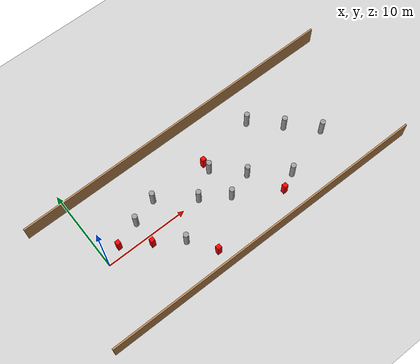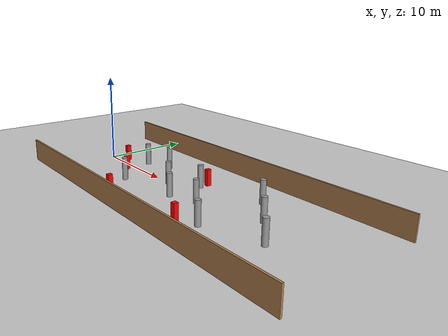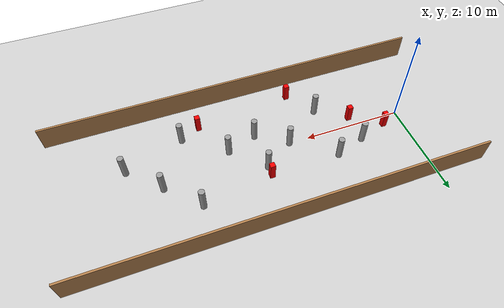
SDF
<?xml version="1.0" ?>
<sdf version="1.7">
    <world name="custom_world">
        <light name='sun' type='directional'>
            <cast_shadows>1</cast_shadows>
            <pose>0 0 10 0 -0 0</pose>
            <diffuse>0.8 0.8 0.8 1</diffuse>
            <specular>0.2 0.2 0.2 1</specular>
            <attenuation>
                <range>1000</range>
                <constant>0.9</constant>
                <linear>0.01</linear>
                <quadratic>0.001</quadratic>
            </attenuation>
            <direction>-0.5 0.1 -0.9</direction>
        </light>

        <model name='ground_plane'>
            <static>1</static>
            <link name='link'>
                <collision name='collision'>
                    <geometry>
                        <plane>
                            <normal>0 0 1</normal>
                            <size>100 100</size>
                        </plane>
                    </geometry>
                    <surface>
                        <contact>
                            <collide_bitmask>65535</collide_bitmask>
                            <ode/>
                        </contact>
                        <friction>
                            <ode>
                                <mu>100</mu>
                                <mu2>50</mu2>
                            </ode>
                        </friction>
                        <bounce/>
                    </surface>
                </collision>
                <visual name='visual'>
                    <cast_shadows>0</cast_shadows>
                    <geometry>
                        <plane>
                            <normal>0 0 1</normal>
                            <size>100 100</size>
                        </plane>
                    </geometry>
                    <material>
                        <script>
                            <uri>file://media/materials/scripts/gazebo.material</uri>
                            <name>Gazebo/Grey</name>
                        </script>
                    </material>
                </visual>
            </link>
        </model>

        <gravity>0 0 -9.8</gravity>
        <magnetic_field>6e-06 2.3e-05 -4.2e-05</magnetic_field>
        <atmosphere type='adiabatic'/>
        <physics type='ode'>
            <max_step_size>0.002</max_step_size>
            <real_time_factor>1</real_time_factor>
            <real_time_update_rate>500</real_time_update_rate>
        </physics>
        <scene>
            <ambient>0.4 0.4 0.4 1</ambient>
            <background>0.7 0.7 0.7 1</background>
            <shadows>1</shadows>
        </scene>

    <model name='wall_left'>
        <static>1</static>
        <pose>15 -8 1.25 0 0 0</pose>
        <link name='link'>
            <collision name='collision'>
                <geometry>
                    <box>
                        <size>40 0.2 2.5</size>
                    </box>
                </geometry>
                <pose>0 0 0 0 0 0</pose>
            </collision>
            <visual name='visual'>
                <pose>0 0 0 0 0 0</pose>
                <geometry>
                    <box>
                        <size>40 0.2 2.5</size>
                    </box>
                </geometry>
                <material>
                    <script>
                        <uri>file://media/materials/scripts/gazebo.material</uri>
                        <name>Gazebo/Wood</name>
                    </script>
                </material>
            </visual>
        </link>
    </model>
    <model name='wall_right'>
        <static>1</static>
        <pose>15 8 1.25 0 0 0</pose>
        <link name='link'>
            <collision name='collision'>
                <geometry>
                    <box>
                        <size>40 0.2 2.5</size>
                    </box>
                </geometry>
                <pose>0 0 0 0 0 0</pose>
            </collision>
            <visual name='visual'>
                <pose>0 0 0 0 0 0</pose>
                <geometry>
                    <box>
                        <size>40 0.2 2.5</size>
                    </box>
                </geometry>
                <material>
                    <script>
                        <uri>file://media/materials/scripts/gazebo.material</uri>
                        <name>Gazebo/Wood</name>
                    </script>
                </material>
            </visual>
        </link>
    </model>
        <model name='pillar_0'>
            <static>1</static>
            <pose>8 -3 1.25 0 0 0</pose>
            <link name='link'>
                <collision name='collision'>
                    <geometry>
                        <cylinder>
                            <radius>0.3</radius>
                            <length>2.5</length>
                        </cylinder>
                    </geometry>
                    <pose>0 0 0 0 0 0</pose>
                </collision>
                <visual name='visual'>
                    <pose>0 0 0 0 0 0</pose>
                    <geometry>
                        <cylinder>
                            <radius>0.3</radius>
                            <length>2.5</length>
                        </cylinder>
                    </geometry>
                    <material>
                        <script>
                            <uri>file://media/materials/scripts/gazebo.material</uri>
                            <name>Gazebo/Grey</name>
                        </script>
                    </material>
                </visual>
            </link>
        </model>
        <model name='pillar_1'>
            <static>1</static>
            <pose>8 3 1.25 0 0 0</pose>
            <link name='link'>
                <collision name='collision'>
                    <geometry>
                        <cylinder>
                            <radius>0.3</radius>
                            <length>2.5</length>
                        </cylinder>
                    </geometry>
                    <pose>0 0 0 0 0 0</pose>
                </collision>
                <visual name='visual'>
                    <pose>0 0 0 0 0 0</pose>
                    <geometry>
                        <cylinder>
                            <radius>0.3</radius>
                            <length>2.5</length>
                        </cylinder>
                    </geometry>
                    <material>
                        <script>
                            <uri>file://media/materials/scripts/gazebo.material</uri>
                            <name>Gazebo/Grey</name>
                        </script>
                    </material>
                </visual>
            </link>
        </model>
        <model name='pillar_2'>
            <static>1</static>
            <pose>15 -2 1.25 0 0 0</pose>
            <link name='link'>
                <collision name='collision'>
                    <geometry>
                        <cylinder>
                            <radius>0.3</radius>
                            <length>2.5</length>
                        </cylinder>
                    </geometry>
                    <pose>0 0 0 0 0 0</pose>
                </collision>
                <visual name='visual'>
                    <pose>0 0 0 0 0 0</pose>
                    <geometry>
                        <cylinder>
                            <radius>0.3</radius>
                            <length>2.5</length>
                        </cylinder>
                    </geometry>
                    <material>
                        <script>
                            <uri>file://media/materials/scripts/gazebo.material</uri>
                            <name>Gazebo/Grey</name>
                        </script>
                    </material>
                </visual>
            </link>
        </model>
        <model name='pillar_3'>
            <static>1</static>
            <pose>15 2 1.25 0 0 0</pose>
            <link name='link'>
                <collision name='collision'>
                    <geometry>
                        <cylinder>
                            <radius>0.3</radius>
                            <length>2.5</length>
                        </cylinder>
                    </geometry>
                    <pose>0 0 0 0 0 0</pose>
                </collision>
                <visual name='visual'>
                    <pose>0 0 0 0 0 0</pose>
                    <geometry>
                        <cylinder>
                            <radius>0.3</radius>
                            <length>2.5</length>
                        </cylinder>
                    </geometry>
                    <material>
                        <script>
                            <uri>file://media/materials/scripts/gazebo.material</uri>
                            <name>Gazebo/Grey</name>
                        </script>
                    </material>
                </visual>
            </link>
        </model>
        <model name='pillar_4'>
            <static>1</static>
            <pose>22 -4 1.25 0 0 0</pose>
            <link name='link'>
                <collision name='collision'>
                    <geometry>
                        <cylinder>
                            <radius>0.3</radius>
                            <length>2.5</length>
                        </cylinder>
                    </geometry>
                    <pose>0 0 0 0 0 0</pose>
                </collision>
                <visual name='visual'>
                    <pose>0 0 0 0 0 0</pose>
                    <geometry>
                        <cylinder>
                            <radius>0.3</radius>
                            <length>2.5</length>
                        </cylinder>
                    </geometry>
                    <material>
                        <script>
                            <uri>file://media/materials/scripts/gazebo.material</uri>
                            <name>Gazebo/Grey</name>
                        </script>
                    </material>
                </visual>
            </link>
        </model>
        <model name='pillar_5'>
            <static>1</static>
            <pose>22 4 1.25 0 0 0</pose>
            <link name='link'>
                <collision name='collision'>
                    <geometry>
                        <cylinder>
                            <radius>0.3</radius>
                            <length>2.5</length>
                        </cylinder>
                    </geometry>
                    <pose>0 0 0 0 0 0</pose>
                </collision>
                <visual name='visual'>
                    <pose>0 0 0 0 0 0</pose>
                    <geometry>
                        <cylinder>
                            <radius>0.3</radius>
                            <length>2.5</length>
                        </cylinder>
                    </geometry>
                    <material>
                        <script>
                            <uri>file://media/materials/scripts/gazebo.material</uri>
                            <name>Gazebo/Grey</name>
                        </script>
                    </material>
                </visual>
            </link>
        </model>
        <model name='pillar_6'>
            <static>1</static>
            <pose>12 0 1.25 0 0 0</pose>
            <link name='link'>
                <collision name='collision'>
                    <geometry>
                        <cylinder>
                            <radius>0.3</radius>
                            <length>2.5</length>
                        </cylinder>
                    </geometry>
                    <pose>0 0 0 0 0 0</pose>
                </collision>
                <visual name='visual'>
                    <pose>0 0 0 0 0 0</pose>
                    <geometry>
                        <cylinder>
                            <radius>0.3</radius>
                            <length>2.5</length>
                        </cylinder>
                    </geometry>
                    <material>
                        <script>
                            <uri>file://media/materials/scripts/gazebo.material</uri>
                            <name>Gazebo/Grey</name>
                        </script>
                    </material>
                </visual>
            </link>
        </model>
        <model name='pillar_7'>
            <static>1</static>
            <pose>18 -1 1.25 0 0 0</pose>
            <link name='link'>
                <collision name='collision'>
                    <geometry>
                        <cylinder>
                            <radius>0.3</radius>
                            <length>2.5</length>
                        </cylinder>
                    </geometry>
                    <pose>0 0 0 0 0 0</pose>
                </collision>
                <visual name='visual'>
                    <pose>0 0 0 0 0 0</pose>
                    <geometry>
                        <cylinder>
                            <radius>0.3</radius>
                            <length>2.5</length>
                        </cylinder>
                    </geometry>
                    <material>
                        <script>
                            <uri>file://media/materials/scripts/gazebo.material</uri>
                            <name>Gazebo/Grey</name>
                        </script>
                    </material>
                </visual>
            </link>
        </model>
        <model name='pillar_8'>
            <static>1</static>
            <pose>25 1 1.25 0 0 0</pose>
            <link name='link'>
                <collision name='collision'>
                    <geometry>
                        <cylinder>
                            <radius>0.3</radius>
                            <length>2.5</length>
                        </cylinder>
                    </geometry>
                    <pose>0 0 0 0 0 0</pose>
                </collision>
                <visual name='visual'>
                    <pose>0 0 0 0 0 0</pose>
                    <geometry>
                        <cylinder>
                            <radius>0.3</radius>
                            <length>2.5</length>
                        </cylinder>
                    </geometry>
                    <material>
                        <script>
                            <uri>file://media/materials/scripts/gazebo.material</uri>
                            <name>Gazebo/Grey</name>
                        </script>
                    </material>
                </visual>
            </link>
        </model>
        <model name='pillar_9'>
            <static>1</static>
            <pose>5 2 1.25 0 0 0</pose>
            <link name='link'>
                <collision name='collision'>
                    <geometry>
                        <cylinder>
                            <radius>0.3</radius>
                            <length>2.5</length>
                        </cylinder>
                    </geometry>
                    <pose>0 0 0 0 0 0</pose>
                </collision>
                <visual name='visual'>
                    <pose>0 0 0 0 0 0</pose>
                    <geometry>
                        <cylinder>
                            <radius>0.3</radius>
                            <length>2.5</length>
                        </cylinder>
                    </geometry>
                    <material>
                        <script>
                            <uri>file://media/materials/scripts/gazebo.material</uri>
                            <name>Gazebo/Grey</name>
                        </script>
                    </material>
                </visual>
            </link>
        </model>
        <model name='pillar_10'>
            <static>1</static>
            <pose>28 -2 1.25 0 0 0</pose>
            <link name='link'>
                <collision name='collision'>
                    <geometry>
                        <cylinder>
                            <radius>0.3</radius>
                            <length>2.5</length>
                        </cylinder>
                    </geometry>
                    <pose>0 0 0 0 0 0</pose>
                </collision>
                <visual name='visual'>
                    <pose>0 0 0 0 0 0</pose>
                    <geometry>
                        <cylinder>
                            <radius>0.3</radius>
                            <length>2.5</length>
                        </cylinder>
                    </geometry>
                    <material>
                        <script>
                            <uri>file://media/materials/scripts/gazebo.material</uri>
                            <name>Gazebo/Grey</name>
                        </script>
                    </material>
                </visual>
            </link>
        </model>

        <model name='person_1'>
            <pose>10 -6 0.9 0 0 0</pose>
            <link name='link'>
                <collision name='collision'>
                    <pose>0 0 0 0 0 0</pose>
                    <geometry>
                        <box>
                            <size>0.5 0.5 1.8</size>
                        </box>
                    </geometry>
                </collision>
                <visual name='visual'>
                    <pose>0 0 0 0 0 0</pose>
                    <geometry>
                        <box>
                            <size>0.5 0.5 1.8</size>
                        </box>
                    </geometry>
                    <material>
                        <ambient>1 0 0 1</ambient>
                        <diffuse>1 0 0 1</diffuse>
                        <specular>0.5 0.5 0.5 1</specular>
                    </material>
                </visual>
            </link>
            <plugin name="obstacle_motion" filename="libobstaclePathPlugin.so">
                <loop>1</loop>
                <velocity>0.8</velocity>
                <angular_velocity>0</angular_velocity>
                <path>
                    <waypoint>10 -6 0.9</waypoint>
                    <waypoint>10 6 0.9</waypoint>
                </path>
            </plugin>
        </model>
        <model name='person_2'>
            <pose>5 -1 0.9 0 0 0</pose>
            <link name='link'>
                <collision name='collision'>
                    <pose>0 0 0 0 0 0</pose>
                    <geometry>
                        <box>
                            <size>0.5 0.5 1.8</size>
                        </box>
                    </geometry>
                </collision>
                <visual name='visual'>
                    <pose>0 0 0 0 0 0</pose>
                    <geometry>
                        <box>
                            <size>0.5 0.5 1.8</size>
                        </box>
                    </geometry>
                    <material>
                        <ambient>1 0 0 1</ambient>
                        <diffuse>1 0 0 1</diffuse>
                        <specular>0.5 0.5 0.5 1</specular>
                    </material>
                </visual>
            </link>
            <plugin name="obstacle_motion" filename="libobstaclePathPlugin.so">
                <loop>1</loop>
                <velocity>1.2</velocity>
                <angular_velocity>0</angular_velocity>
                <path>
                    <waypoint>5 -1 0.9</waypoint>
                    <waypoint>25 -1 0.9</waypoint>
                </path>
            </plugin>
        </model>
        <model name='person_3'>
            <pose>20 -5 0.9 0 0 0</pose>
            <link name='link'>
                <collision name='collision'>
                    <pose>0 0 0 0 0 0</pose>
                    <geometry>
                        <box>
                            <size>0.5 0.5 1.8</size>
                        </box>
                    </geometry>
                </collision>
                <visual name='visual'>
                    <pose>0 0 0 0 0 0</pose>
                    <geometry>
                        <box>
                            <size>0.5 0.5 1.8</size>
                        </box>
                    </geometry>
                    <material>
                        <ambient>1 0 0 1</ambient>
                        <diffuse>1 0 0 1</diffuse>
                        <specular>0.5 0.5 0.5 1</specular>
                    </material>
                </visual>
            </link>
            <plugin name="obstacle_motion" filename="libobstaclePathPlugin.so">
                <loop>1</loop>
                <velocity>0.6</velocity>
                <angular_velocity>0</angular_velocity>
                <path>
                    <waypoint>20 -5 0.9</waypoint>
                    <waypoint>20 5 0.9</waypoint>
                </path>
            </plugin>
        </model>
        <model name='person_4'>
            <pose>15 3 0.9 0 0 0</pose>
            <link name='link'>
                <collision name='collision'>
                    <pose>0 0 0 0 0 0</pose>
                    <geometry>
                        <box>
                            <size>0.5 0.5 1.8</size>
                        </box>
                    </geometry>
                </collision>
                <visual name='visual'>
                    <pose>0 0 0 0 0 0</pose>
                    <geometry>
                        <box>
                            <size>0.5 0.5 1.8</size>
                        </box>
                    </geometry>
                    <material>
                        <ambient>1 0 0 1</ambient>
                        <diffuse>1 0 0 1</diffuse>
                        <specular>0.5 0.5 0.5 1</specular>
                    </material>
                </visual>
            </link>
            <plugin name="obstacle_motion" filename="libobstaclePathPlugin.so">
                <loop>1</loop>
                <velocity>1.0</velocity>
                <angular_velocity>0</angular_velocity>
                <path>
                    <waypoint>15 3 0.9</waypoint>
                    <waypoint>15 -3 0.9</waypoint>
                </path>
            </plugin>
        </model>
        <model name='person_5'>
            <pose>2 1 0.9 0 0 0</pose>
            <link name='link'>
                <collision name='collision'>
                    <pose>0 0 0 0 0 0</pose>
                    <geometry>
                        <box>
                            <size>0.5 0.5 1.8</size>
                        </box>
                    </geometry>
                </collision>
                <visual name='visual'>
                    <pose>0 0 0 0 0 0</pose>
                    <geometry>
                        <box>
                            <size>0.5 0.5 1.8</size>
                        </box>
                    </geometry>
                    <material>
                        <ambient>1 0 0 1</ambient>
                        <diffuse>1 0 0 1</diffuse>
                        <specular>0.5 0.5 0.5 1</specular>
                    </material>
                </visual>
            </link>
            <plugin name="obstacle_motion" filename="libobstaclePathPlugin.so">
                <loop>1</loop>
                <velocity>0.5</velocity>
                <angular_velocity>0</angular_velocity>
                <path>
                    <waypoint>2 1 0.9</waypoint>
                    <waypoint>28 1 0.9</waypoint>
                </path>
            </plugin>
        </model>
    </world>
</sdf>
